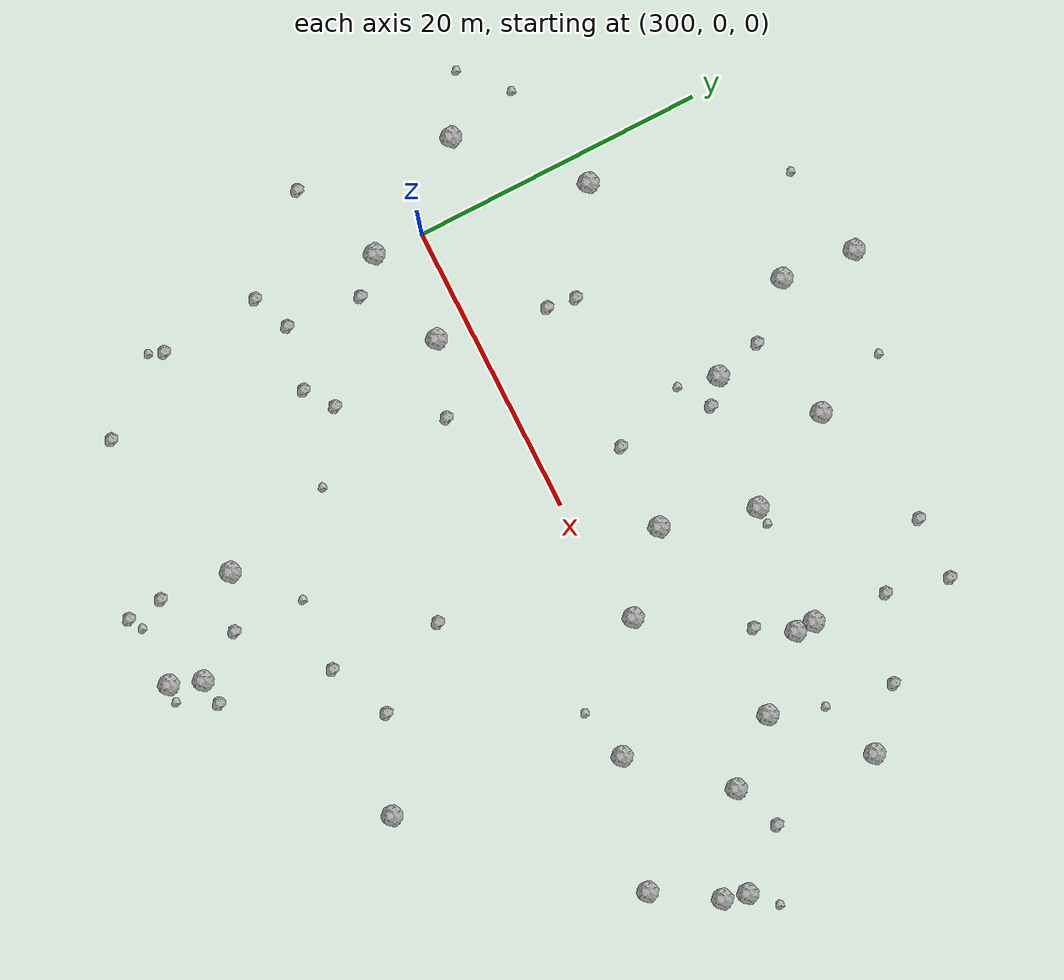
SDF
<sdf version="1.6">
 <world name="default">
  <include><uri>model://sun</uri></include>
  <model name="rock1_8_3">
   <include><uri>model://rock1</uri><pose>299.73644324609455 -3.37711587434746 0.5 0 0 0</pose></include>
  </model>
  <model name="rock1_8_4">
   <include><uri>model://rock1</uri><pose>348.2902724443364 -0.6956511889664476 0.5 0 0 0</pose></include>
  </model>
  <model name="rock1_8_5">
   <include><uri>model://rock1</uri><pose>333.1179912105985 -19.130814231495997 0.5 0 0 0</pose></include>
  </model>
  <model name="rock1_8_6">
   <include><uri>model://rock1</uri><pose>326.08296506470543 11.468518631860974 0.5 0 0 0</pose></include>
  </model>
  <model name="rock1_8_7">
   <include><uri>model://rock1</uri><pose>322.4200077698415 18.00799636415441 0.5 0 0 0</pose></include>
  </model>
  <model name="rock1_8_8">
   <include><uri>model://rock1</uri><pose>334.4148497245352 11.298558938576399 0.5 0 0 0</pose></include>
  </model>
  <model name="rock1_8_9">
   <include><uri>model://rock1</uri><pose>313.3836063417707 19.762565589305424 0.5 0 0 0</pose></include>
  </model>
  <model name="rock1_8_10">
   <include><uri>model://rock1</uri><pose>319.600718945315 -26.132349086029144 0.5 0 0 0</pose></include>
  </model>
  <model name="rock1_8_11">
   <include><uri>model://rock1</uri><pose>314.0593949809752 -21.311101396217254 0.5 0 0 0</pose></include>
  </model>
  <model name="rock1_8_12">
   <include><uri>model://rock1</uri><pose>338.4817397860909 5.817009728452419 0.5 0 0 0</pose></include>
  </model>
  <model name="rock1_8_13">
   <include><uri>model://rock1</uri><pose>301.98575868536227 11.299486271080056 0.5 0 0 0</pose></include>
  </model>
  <model name="rock1_8_14">
   <include><uri>model://rock1</uri><pose>343.9312239865497 10.890234394120434 0.5 0 0 0</pose></include>
  </model>
  <model name="rock1_8_15">
   <include><uri>model://rock1</uri><pose>341.834647228799 1.7716337100402875 0.5 0 0 0</pose></include>
  </model>
  <model name="rock1_8_16">
   <include><uri>model://rock1</uri><pose>318.80307058441247 -28.272424489267966 0.5 0 0 0</pose></include>
  </model>
  <model name="rock1_8_17">
   <include><uri>model://rock1</uri><pose>324.2564600570742 5.091484185125019 0.5 0 0 0</pose></include>
  </model>
  <model name="rock1_8_18">
   <include><uri>model://rock1</uri><pose>317.20570451148245 13.10780869411144 0.5 0 0 0</pose></include>
  </model>
  <model name="rock1_8_19">
   <include><uri>model://rock1</uri><pose>345.1875724397427 -6.490310522600417 0.5 0 0 0</pose></include>
  </model>
  <model name="rock1_8_20">
   <include><uri>model://rock1</uri><pose>306.5879082586722 -2.2903121550595955 0.5 0 0 0</pose></include>
  </model>
  <model name="rock1_8_21">
   <include><uri>model://rock1</uri><pose>334.4316988489584 9.964139224306884 0.5 0 0 0</pose></include>
  </model>
  <model name="rock1_8_22">
   <include><uri>model://rock1</uri><pose>295.1831527343549 4.618974935621395 0.5 0 0 0</pose></include>
  </model>
  <model name="rock1_8_23">
   <include><uri>model://rock1</uri><pose>336.5330178544685 -3.9252341077968147 0.5 0 0 0</pose></include>
  </model>
  <model name="rock1_8_24">
   <include><uri>model://rock1</uri><pose>313.886745852901 24.842771280558537 0.5 0 0 0</pose></include>
  </model>
  <model name="rock1_8_25">
   <include><uri>model://rock1</uri><pose>328.77259640686464 0.8747860544053374 0.5 0 0 0</pose></include>
  </model>
  <model name="rock1_8_26">
   <include><uri>model://rock1</uri><pose>347.84548612086786 -2.338425062121189 0.5 0 0 0</pose></include>
  </model>
  <model name="rock2_8_0">
   <include><uri>model://rock2</uri><pose>334.8620179757208 16.37155581580668 0.3 0 0 0</pose></include>
  </model>
  <model name="rock2_8_1">
   <include><uri>model://rock2</uri><pose>323.17747814377003 -10.69949030671409 0.3 0 0 0</pose></include>
  </model>
  <model name="rock2_8_2">
   <include><uri>model://rock2</uri><pose>322.7651276432127 -18.24570236416607 0.3 0 0 0</pose></include>
  </model>
  <model name="rock2_8_3">
   <include><uri>model://rock2</uri><pose>313.53219395427936 -26.19502463631787 0.3 0 0 0</pose></include>
  </model>
  <model name="rock2_8_4">
   <include><uri>model://rock2</uri><pose>331.5045760745737 20.54539640742769 0.3 0 0 0</pose></include>
  </model>
  <model name="rock2_8_5">
   <include><uri>model://rock2</uri><pose>318.3862619810814 5.283463344432526 0.3 0 0 0</pose></include>
  </model>
  <model name="rock2_8_6">
   <include><uri>model://rock2</uri><pose>326.94134335406113 -16.407478011754744 0.3 0 0 0</pose></include>
  </model>
  <model name="rock2_8_7">
   <include><uri>model://rock2</uri><pose>321.35962918967186 -25.90001108443122 0.3 0 0 0</pose></include>
  </model>
  <model name="rock2_8_8">
   <include><uri>model://rock2</uri><pose>345.1381952057414 3.0636831300533274 0.3 0 0 0</pose></include>
  </model>
  <model name="rock2_8_9">
   <include><uri>model://rock2</uri><pose>311.45538686574275 -4.054990659197081 0.3 0 0 0</pose></include>
  </model>
  <model name="rock2_8_10">
   <include><uri>model://rock2</uri><pose>340.3761465761177 14.115382542353565 0.3 0 0 0</pose></include>
  </model>
  <model name="rock2_8_11">
   <include><uri>model://rock2</uri><pose>332.94937250585133 7.609682272446996 0.3 0 0 0</pose></include>
  </model>
  <model name="rock2_8_12">
   <include><uri>model://rock2</uri><pose>301.32602064070755 -10.642156962253814 0.3 0 0 0</pose></include>
  </model>
  <model name="rock2_8_13">
   <include><uri>model://rock2</uri><pose>335.88727200614466 20.59152636476449 0.3 0 0 0</pose></include>
  </model>
  <model name="rock2_8_14">
   <include><uri>model://rock2</uri><pose>299.1451941487313 -18.623817974926308 0.3 0 0 0</pose></include>
  </model>
  <model name="rock2_8_15">
   <include><uri>model://rock2</uri><pose>301.7727048622389 -5.472685450484157 0.3 0 0 0</pose></include>
  </model>
  <model name="rock2_8_16">
   <include><uri>model://rock2</uri><pose>308.0235147360375 5.147713778214744 0.3 0 0 0</pose></include>
  </model>
  <model name="rock2_8_17">
   <include><uri>model://rock2</uri><pose>316.4082338572864 16.369316288786976 0.3 0 0 0</pose></include>
  </model>
  <model name="rock2_8_18">
   <include><uri>model://rock2</uri><pose>305.5524907707216 -11.58852514304131 0.3 0 0 0</pose></include>
  </model>
  <model name="rock2_8_19">
   <include><uri>model://rock2</uri><pose>317.61716770877473 -22.864344159786736 0.3 0 0 0</pose></include>
  </model>
  <model name="rock2_8_20">
   <include><uri>model://rock2</uri><pose>313.7292736087222 -28.638791737924826 0.3 0 0 0</pose></include>
  </model>
  <model name="rock2_8_21">
   <include><uri>model://rock2</uri><pose>318.69700528577516 11.768107544152215 0.3 0 0 0</pose></include>
  </model>
  <model name="rock2_8_22">
   <include><uri>model://rock2</uri><pose>293.63250496013507 -5.974747449715338 0.3 0 0 0</pose></include>
  </model>
  <model name="rock2_8_23">
   <include><uri>model://rock2</uri><pose>298.75543823269726 -11.695951501282103 0.3 0 0 0</pose></include>
  </model>
  <model name="rock2_8_24">
   <include><uri>model://rock2</uri><pose>307.45357135800276 -10.250231079700733 0.3 0 0 0</pose></include>
  </model>
  <model name="rock2_8_25">
   <include><uri>model://rock2</uri><pose>308.3123469207428 7.120252418670127 0.3 0 0 0</pose></include>
  </model>
  <model name="rock2_8_26">
   <include><uri>model://rock2</uri><pose>302.6929774949331 -24.314868102205487 0.3 0 0 0</pose></include>
  </model>
  <model name="rock3_8_0">
   <include><uri>model://rock3</uri><pose>320.65410327291124 23.14152705272317 0.2 0 0 0</pose></include>
  </model>
  <model name="rock3_8_1">
   <include><uri>model://rock3</uri><pose>291.36437028425365 6.900688764902824 0.2 0 0 0</pose></include>
  </model>
  <model name="rock3_8_2">
   <include><uri>model://rock3</uri><pose>327.26666613963545 11.506846699936126 0.2 0 0 0</pose></include>
  </model>
  <model name="rock3_8_3">
   <include><uri>model://rock3</uri><pose>317.7932569331022 -17.932221541222276 0.2 0 0 0</pose></include>
  </model>
  <model name="rock3_8_4">
   <include><uri>model://rock3</uri><pose>332.870762656804 -4.84099996822804 0.2 0 0 0</pose></include>
  </model>
  <model name="rock3_8_5">
   <include><uri>model://rock3</uri><pose>339.6844835367338 9.417929927908155 0.2 0 0 0</pose></include>
  </model>
  <model name="rock3_8_6">
   <include><uri>model://rock3</uri><pose>316.56397363059733 10.35722248656242 0.2 0 0 0</pose></include>
  </model>
  <model name="rock3_8_7">
   <include><uri>model://rock3</uri><pose>298.758189172166 -19.629728984214495 0.2 0 0 0</pose></include>
  </model>
  <model name="rock3_8_8">
   <include><uri>model://rock3</uri><pose>314.6735965874661 -28.172041175874092 0.2 0 0 0</pose></include>
  </model>
  <model name="rock3_8_9">
   <include><uri>model://rock3</uri><pose>307.3445839918388 23.480972648667205 0.2 0 0 0</pose></include>
  </model>
  <model name="rock3_8_10">
   <include><uri>model://rock3</uri><pose>319.988278173217 -28.408385909999986 0.2 0 0 0</pose></include>
  </model>
  <model name="rock3_8_11">
   <include><uri>model://rock3</uri><pose>311.80757646886883 -13.419965753921929 0.2 0 0 0</pose></include>
  </model>
  <model name="rock3_8_12">
   <include><uri>model://rock3</uri><pose>349.8610755842209 0.8177680998934242 0.2 0 0 0</pose></include>
  </model>
  <model name="rock3_8_13">
   <include><uri>model://rock3</uri><pose>294.2372696602021 9.52329034507109 0.2 0 0 0</pose></include>
  </model>
 </world>
</sdf>
